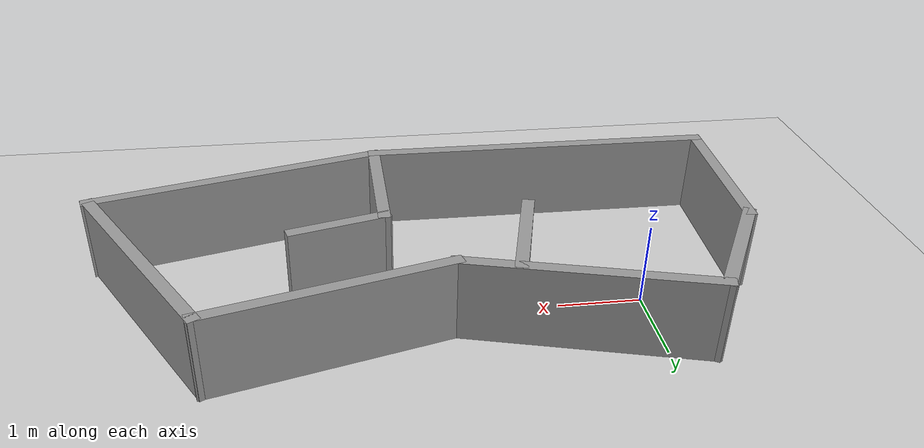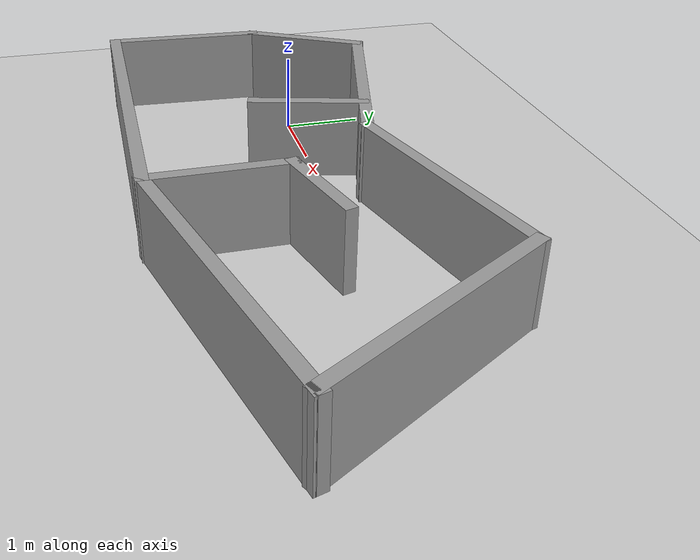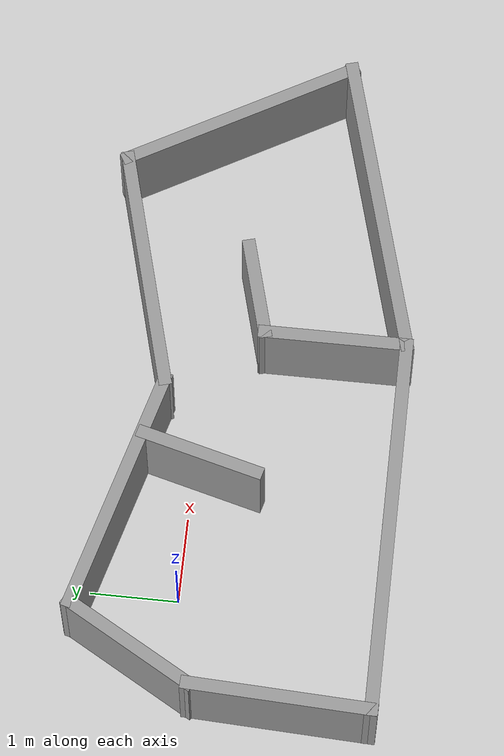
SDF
<sdf version="1.7">
 <world name="default">
  <light name="sun" type="directional">
   <pose>0 0 10 0 -0 0</pose>
   <diffuse>0.8 0.8 0.8 1</diffuse>
   <specular>0.2 0.2 0.2 1</specular>
   <attenuation>
    <range>1000</range>
    <constant>0.9</constant>
    <linear>0.01</linear>
    <quadratic>0.001</quadratic>
   </attenuation>
   <direction>-0.5 0.1 -0.9</direction>
   <spot><inner_angle>0</inner_angle><outer_angle>0</outer_angle><falloff>0</falloff></spot>
  </light>
  <model name="ground_plane">
   <static>1</static>
   <link name="link">
    <collision name="collision">
     <geometry><plane><normal>0 0 1</normal><size>100 100</size></plane></geometry>
     <surface>
      <contact><collide_bitmask>65535</collide_bitmask></contact>
      <friction><ode><mu>100</mu><mu2>50</mu2></ode></friction>
     </surface>
    </collision>
    <visual name="visual">
     <cast_shadows>0</cast_shadows>
     <geometry><plane><normal>0 0 1</normal><size>100 100</size></plane></geometry>
     <material>
      <script><uri>file://media/materials/scripts/gazebo.material</uri><name>Gazebo/Grey</name></script>
     </material>
    </visual>
   </link>
  </model>
  <gravity>0 0 -9.8</gravity>
  <magnetic_field>6e-06 2.3e-05 -4.2e-05</magnetic_field>
  <atmosphere type="adiabatic"/>
  <physics type="ode">
   <max_step_size>0.001</max_step_size>
   <real_time_factor>1</real_time_factor>
   <real_time_update_rate>1000</real_time_update_rate>
  </physics>
  <scene><ambient>0.4 0.4 0.4 1</ambient><background>0.7 0.7 0.7 1</background><shadows>1</shadows></scene>
  <audio><device>default</device></audio>
  <spherical_coordinates>
   <surface_model>EARTH_WGS84</surface_model>
   <latitude_deg>0</latitude_deg>
   <longitude_deg>0</longitude_deg>
   <elevation>0</elevation>
   <heading_deg>0</heading_deg>
  </spherical_coordinates>
  <model name="maailm1">
   <pose>2.56543 0.15608 0 0 -0 0</pose>
   <link name="Wall_0">
    <collision name="Wall_0_Collision">
     <geometry><box><size>1.75 0.15 1</size></box></geometry>
     <pose>0 0 0.5 0 -0 0</pose>
    </collision>
    <visual name="Wall_0_Visual">
     <pose>0 0 0.5 0 -0 0</pose>
     <geometry><box><size>1.75 0.15 1</size></box></geometry>
     <material>
      <script><uri>file://media/materials/scripts/gazebo.material</uri><name>Gazebo/Grey</name></script>
      <ambient>1 1 1 1</ambient>
     </material>
     <meta><layer>0</layer></meta>
    </visual>
    <pose>-3.43123 0.283391 0 0 -0 1.04731</pose>
   </link>
   <link name="Wall_1">
    <collision name="Wall_1_Collision">
     <geometry><box><size>3.0002 0.15 1</size></box></geometry>
     <pose>0 0 0.5 0 -0 0</pose>
    </collision>
    <visual name="Wall_1_Visual">
     <pose>0 0 0.5 0 -0 0</pose>
     <geometry><box><size>3.0002 0.15 1</size></box></geometry>
     <material>
      <script><uri>file://media/materials/scripts/gazebo.material</uri><name>Gazebo/Grey</name></script>
      <ambient>1 1 1 1</ambient>
     </material>
     <meta><layer>0</layer></meta>
    </visual>
    <pose>-1.65473 0.607391 0 0 -0 -0.261913</pose>
   </link>
   <link name="Wall_10">
    <collision name="Wall_10_Collision">
     <geometry><box><size>1.49989 0.15 1</size></box></geometry>
     <pose>0 0 0.5 0 -0 0</pose>
    </collision>
    <visual name="Wall_10_Visual">
     <pose>0 0 0.5 0 -0 0</pose>
     <geometry><box><size>1.49989 0.15 1</size></box></geometry>
     <material>
      <script><uri>file://media/materials/scripts/gazebo.material</uri><name>Gazebo/Grey</name></script>
      <ambient>1 1 1 1</ambient>
     </material>
     <meta><layer>0</layer></meta>
    </visual>
    <pose>-1.12873 -0.253609 0 0 -0 -1.83231</pose>
   </link>
   <link name="Wall_12">
    <collision name="Wall_12_Collision">
     <geometry><box><size>1.76521 0.15 1</size></box></geometry>
     <pose>0 0 0.5 0 -0 0</pose>
    </collision>
    <visual name="Wall_12_Visual">
     <pose>0 0 0.5 0 -0 0</pose>
     <geometry><box><size>1.76521 0.15 1</size></box></geometry>
     <material>
      <script><uri>file://media/materials/scripts/gazebo.material</uri><name>Gazebo/Grey</name></script>
      <ambient>1 1 1 1</ambient>
     </material>
     <meta><layer>0</layer></meta>
    </visual>
    <pose>0.421768 -1.63111 0 0 -0 1.5708</pose>
   </link>
   <link name="Wall_13">
    <collision name="Wall_13_Collision">
     <geometry><box><size>1.25028 0.15 1</size></box></geometry>
     <pose>0 0 0.5 0 -0 0</pose>
    </collision>
    <visual name="Wall_13_Visual">
     <pose>0 0 0.5 0 -0 0</pose>
     <geometry><box><size>1.25028 0.15 1</size></box></geometry>
     <material>
      <script><uri>file://media/materials/scripts/gazebo.material</uri><name>Gazebo/Grey</name></script>
      <ambient>1 1 1 1</ambient>
     </material>
     <meta><layer>0</layer></meta>
    </visual>
    <pose>0.953268 -0.681609 0 0 -0 0.261071</pose>
   </link>
   <link name="Wall_2">
    <collision name="Wall_2_Collision">
     <geometry><box><size>3.0002 0.15 1</size></box></geometry>
     <pose>0 0 0.5 0 -0 0</pose>
    </collision>
    <visual name="Wall_2_Visual">
     <pose>0 0 0.5 0 -0 0</pose>
     <geometry><box><size>3.0002 0.15 1</size></box></geometry>
     <material>
      <script><uri>file://media/materials/scripts/gazebo.material</uri><name>Gazebo/Grey</name></script>
      <ambient>1 1 1 1</ambient>
     </material>
     <meta><layer>0</layer></meta>
    </visual>
    <pose>1.09827 0.607391 0 0 -0 0.261913</pose>
   </link>
   <link name="Wall_3">
    <collision name="Wall_3_Collision">
     <geometry><box><size>3.0139 0.15 1</size></box></geometry>
     <pose>0 0 0.5 0 -0 0</pose>
    </collision>
    <visual name="Wall_3_Visual">
     <pose>0 0 0.5 0 -0 0</pose>
     <geometry><box><size>3.0139 0.15 1</size></box></geometry>
     <material>
      <script><uri>file://media/materials/scripts/gazebo.material</uri><name>Gazebo/Grey</name></script>
      <ambient>1 1 1 1</ambient>
     </material>
     <meta><layer>0</layer></meta>
    </visual>
    <pose>3.18727 -0.265713 0 0 -0 -1.05</pose>
   </link>
   <link name="Wall_6">
    <collision name="Wall_6_Collision">
     <geometry><box><size>3.76509 0.15 1</size></box></geometry>
     <pose>0 0 0.5 0 -0 0</pose>
    </collision>
    <visual name="Wall_6_Visual">
     <pose>0 0 0.5 0 -0 0</pose>
     <geometry><box><size>3.76509 0.15 1</size></box></geometry>
     <material>
      <script><uri>file://media/materials/scripts/gazebo.material</uri><name>Gazebo/Grey</name></script>
      <ambient>1 1 1 1</ambient>
     </material>
     <meta><layer>0</layer></meta>
    </visual>
    <pose>2.16837 -1.97321 0 0 -0 -2.88119</pose>
   </link>
   <link name="Wall_7">
    <collision name="Wall_7_Collision">
     <geometry><box><size>4.49958 0.15 1</size></box></geometry>
     <pose>0 0 0.5 0 -0 0</pose>
    </collision>
    <visual name="Wall_7_Visual">
     <pose>0 0 0.5 0 -0 0</pose>
     <geometry><box><size>4.49958 0.15 1</size></box></geometry>
     <material>
      <script><uri>file://media/materials/scripts/gazebo.material</uri><name>Gazebo/Grey</name></script>
      <ambient>1 1 1 1</ambient>
     </material>
     <meta><layer>0</layer></meta>
    </visual>
    <pose>-1.75323 -2.43111 0 0 -0 3.13814</pose>
   </link>
   <link name="Wall_8">
    <collision name="Wall_8_Collision">
     <geometry><box><size>2.16659 0.15 1</size></box></geometry>
     <pose>0 0 0.5 0 -0 0</pose>
    </collision>
    <visual name="Wall_8_Visual">
     <pose>0 0 0.5 0 -0 0</pose>
     <geometry><box><size>2.16659 0.15 1</size></box></geometry>
     <material>
      <script><uri>file://media/materials/scripts/gazebo.material</uri><name>Gazebo/Grey</name></script>
      <ambient>1 1 1 1</ambient>
     </material>
     <meta><layer>0</layer></meta>
    </visual>
    <pose>-3.87973 -1.41661 0 0 -0 1.52267</pose>
   </link>
   <static>1</static>
  </model>
 </world>
</sdf>
